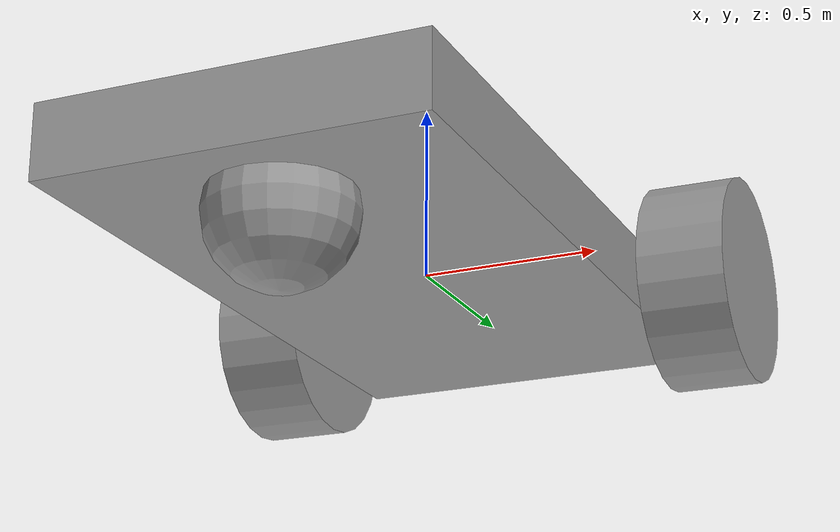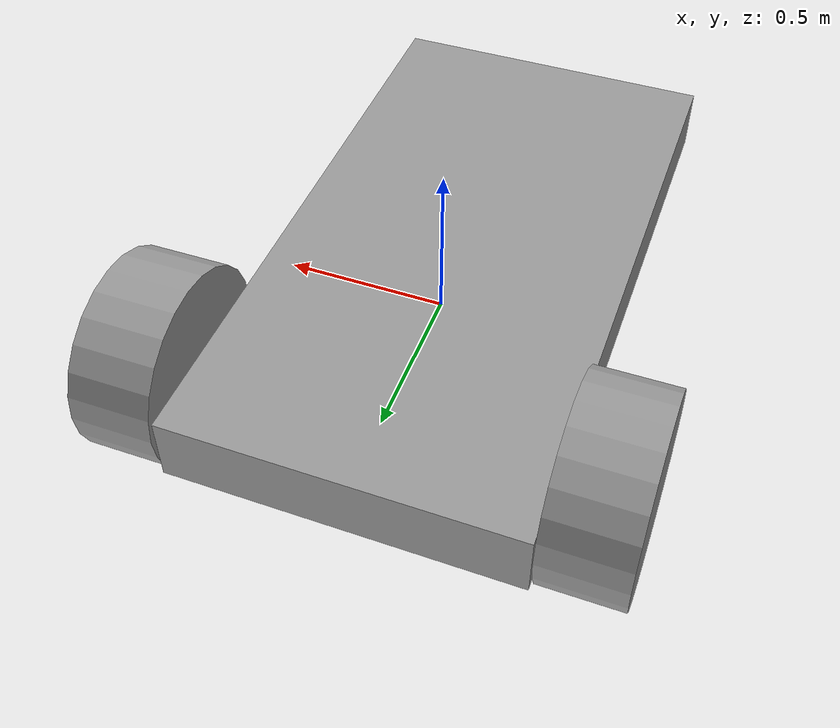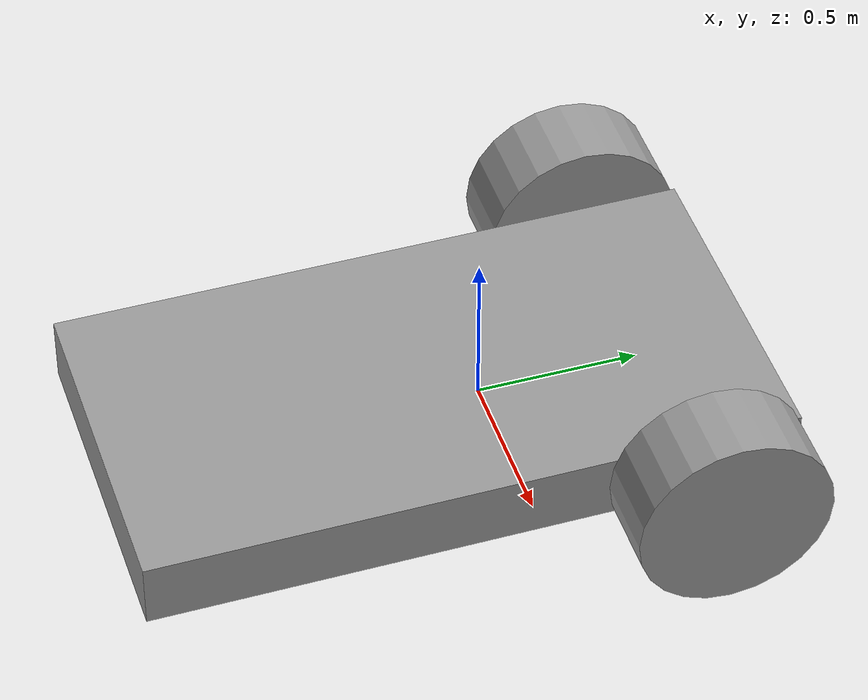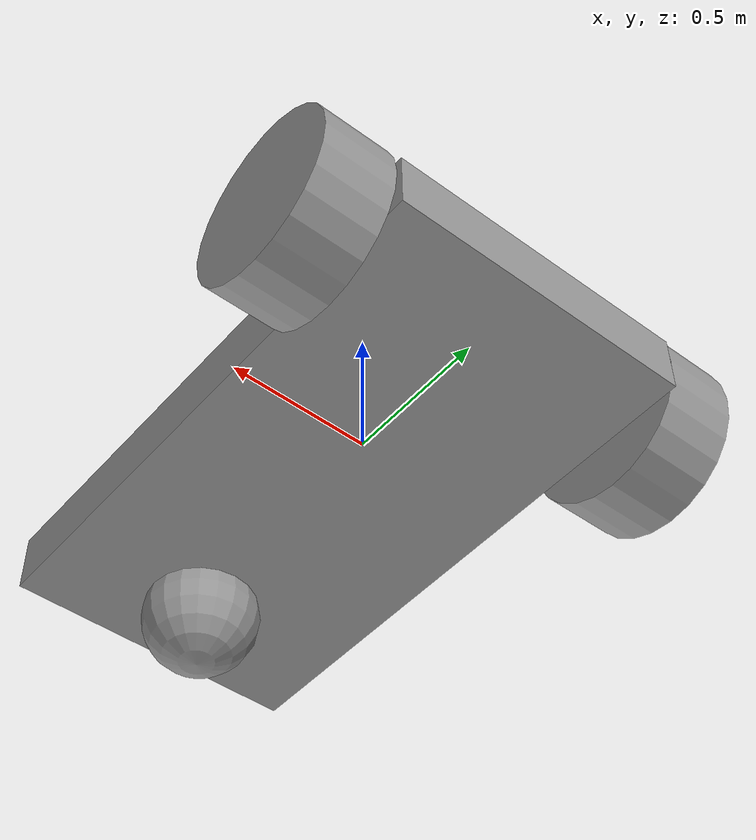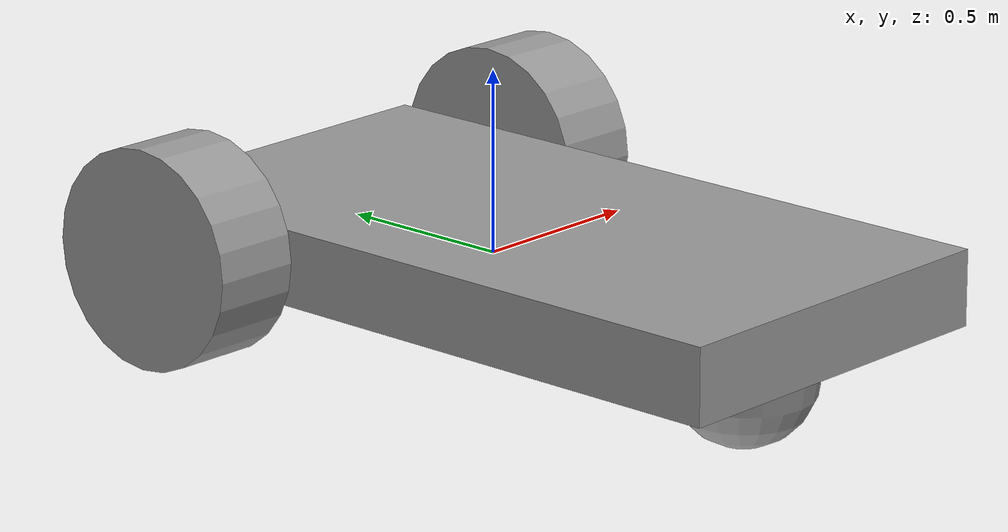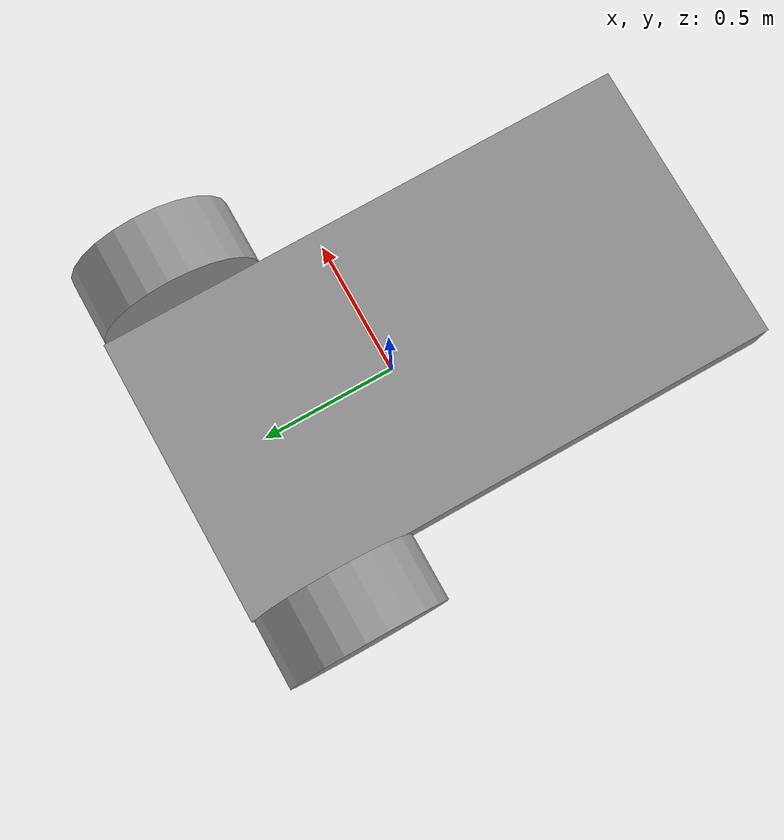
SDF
<?xml version='1.0'?>
<sdf version='1.7'>
  <model name='cart_robot'>
    <link name='link_1'>
      <inertial>
        <mass>0.438915</mass>
        <inertia>
          <ixx>0.146216</ixx>
          <ixy>0</ixy>
          <ixz>0</ixz>
          <iyy>0.0427244</iyy>
          <iyz>0</iyz>
          <izz>0.185771</izz>
        </inertia>
        <pose>0 0 0 0 -0 0</pose>
      </inertial>
      <pose>-0.003748 -0.17357 0.031033 0 -0 0</pose>
      <visual name='visual'>
        <pose>0 0 0 0 -0 0</pose>
        <geometry>
          <box>
            <size>1.06055 1.98853 0.208153</size>
          </box>
        </geometry>
        <material>
          <lighting>1</lighting>
          <script>
            <uri>file://media/materials/scripts/gazebo.material</uri>
            <name>Gazebo/Grey</name>
          </script>
          <shader type='pixel'/>
          <emissive>0 0 0 1</emissive>
        </material>
        <transparency>0</transparency>
        <cast_shadows>1</cast_shadows>
      </visual>
      <collision name='collision'>
        <laser_retro>0</laser_retro>
        <max_contacts>10</max_contacts>
        <pose>0 0 0 0 -0 0</pose>
        <geometry>
          <box>
            <size>1.06055 1.98853 0.208153</size>
          </box>
        </geometry>
        <surface>
          <friction>
            <ode>
              <mu>1</mu>
              <mu2>1</mu2>
              <fdir1>0 0 0</fdir1>
              <slip1>0</slip1>
              <slip2>0</slip2>
            </ode>
            <torsional>
              <coefficient>1</coefficient>
              <patch_radius>0</patch_radius>
              <surface_radius>0</surface_radius>
              <use_patch_radius>1</use_patch_radius>
              <ode>
                <slip>0</slip>
              </ode>
            </torsional>
          </friction>
          <bounce>
            <restitution_coefficient>0</restitution_coefficient>
            <threshold>1e+06</threshold>
          </bounce>
          <contact>
            <collide_without_contact>0</collide_without_contact>
            <collide_without_contact_bitmask>1</collide_without_contact_bitmask>
            <collide_bitmask>1</collide_bitmask>
            <ode>
              <soft_cfm>0</soft_cfm>
              <soft_erp>0.2</soft_erp>
              <kp>1e+13</kp>
              <kd>1</kd>
              <max_vel>0.01</max_vel>
              <min_depth>0</min_depth>
            </ode>
            <bullet>
              <split_impulse>1</split_impulse>
              <split_impulse_penetration_threshold>-0.01</split_impulse_penetration_threshold>
              <soft_cfm>0</soft_cfm>
              <soft_erp>0.2</soft_erp>
              <kp>1e+13</kp>
              <kd>1</kd>
            </bullet>
          </contact>
        </surface>
      </collision>
    </link>
    <link name='link_3'>
      <inertial>
        <mass>1</mass>
        <inertia>
          <ixx>0.145833</ixx>
          <ixy>0</ixy>
          <ixz>0</ixz>
          <iyy>0.145833</iyy>
          <iyz>0</iyz>
          <izz>0.125</izz>
        </inertia>
        <pose>0 0 0 1.5708 -0 0</pose>
      </inertial>
      <pose>0.668748 0.520697 0.048939 0 -1.56333 0</pose>
      <gravity>1</gravity>
      <self_collide>0</self_collide>
      <kinematic>0</kinematic>
      <enable_wind>0</enable_wind>
      <visual name='visual'>
        <pose>0 0 0 0 -0 0</pose>
        <geometry>
          <cylinder>
            <radius>0.3</radius>
            <length>0.25</length>
          </cylinder>
        </geometry>
        <material>
          <lighting>1</lighting>
          <script>
            <uri>file://media/materials/scripts/gazebo.material</uri>
            <name>Gazebo/Grey</name>
          </script>
          <shader type='pixel'>
            <normal_map>__default__</normal_map>
          </shader>
          <ambient>0.3 0.3 0.3 1</ambient>
          <diffuse>0.7 0.7 0.7 1</diffuse>
          <specular>0.01 0.01 0.01 1</specular>
          <emissive>0 0 0 1</emissive>
        </material>
        <transparency>0</transparency>
        <cast_shadows>1</cast_shadows>
      </visual>
      <collision name='collision'>
        <laser_retro>0</laser_retro>
        <max_contacts>10</max_contacts>
        <pose>0 0 0 0 -0 0</pose>
        <geometry>
          <cylinder>
            <radius>0.3</radius>
            <length>0.25</length>
          </cylinder>
        </geometry>
        <surface>
          <friction>
            <ode>
              <mu>1</mu>
              <mu2>1</mu2>
              <fdir1>0 0 0</fdir1>
              <slip1>0</slip1>
              <slip2>0</slip2>
            </ode>
            <torsional>
              <coefficient>1</coefficient>
              <patch_radius>0</patch_radius>
              <surface_radius>0</surface_radius>
              <use_patch_radius>1</use_patch_radius>
              <ode>
                <slip>0</slip>
              </ode>
            </torsional>
          </friction>
          <bounce>
            <restitution_coefficient>0</restitution_coefficient>
            <threshold>1e+06</threshold>
          </bounce>
          <contact>
            <collide_without_contact>0</collide_without_contact>
            <collide_without_contact_bitmask>1</collide_without_contact_bitmask>
            <collide_bitmask>1</collide_bitmask>
            <ode>
              <soft_cfm>0</soft_cfm>
              <soft_erp>0.2</soft_erp>
              <kp>1e+13</kp>
              <kd>1</kd>
              <max_vel>0.01</max_vel>
              <min_depth>0</min_depth>
            </ode>
            <bullet>
              <split_impulse>1</split_impulse>
              <split_impulse_penetration_threshold>-0.01</split_impulse_penetration_threshold>
              <soft_cfm>0</soft_cfm>
              <soft_erp>0.2</soft_erp>
              <kp>1e+13</kp>
              <kd>1</kd>
            </bullet>
          </contact>
        </surface>
      </collision>
    </link>
    <link name='link_3_clone'>
      <inertial>
        <mass>1</mass>
        <inertia>
          <ixx>0.145833</ixx>
          <ixy>0</ixy>
          <ixz>0</ixz>
          <iyy>0.145833</iyy>
          <iyz>0</iyz>
          <izz>0.125</izz>
        </inertia>
        <pose>0 0 0 1.5708 -0 0</pose>
      </inertial>
      <pose>-0.661274 0.520698 0.048995 0 -1.56333 0</pose>
      <gravity>1</gravity>
      <self_collide>0</self_collide>
      <kinematic>0</kinematic>
      <enable_wind>0</enable_wind>
      <visual name='visual'>
        <pose>0 0 0 0 -0 0</pose>
        <geometry>
          <cylinder>
            <radius>0.3</radius>
            <length>0.25</length>
          </cylinder>
        </geometry>
        <material>
          <lighting>1</lighting>
          <script>
            <uri>file://media/materials/scripts/gazebo.material</uri>
            <name>Gazebo/Grey</name>
          </script>
          <shader type='pixel'>
            <normal_map>__default__</normal_map>
          </shader>
          <ambient>0.3 0.3 0.3 1</ambient>
          <diffuse>0.7 0.7 0.7 1</diffuse>
          <specular>0.01 0.01 0.01 1</specular>
          <emissive>0 0 0 1</emissive>
        </material>
        <transparency>0</transparency>
        <cast_shadows>1</cast_shadows>
      </visual>
      <collision name='collision'>
        <laser_retro>0</laser_retro>
        <max_contacts>10</max_contacts>
        <pose>0 0 0 0 -0 0</pose>
        <geometry>
          <cylinder>
            <radius>0.3</radius>
            <length>0.25</length>
          </cylinder>
        </geometry>
        <surface>
          <friction>
            <ode>
              <mu>1</mu>
              <mu2>1</mu2>
              <fdir1>0 0 0</fdir1>
              <slip1>0</slip1>
              <slip2>0</slip2>
            </ode>
            <torsional>
              <coefficient>1</coefficient>
              <patch_radius>0</patch_radius>
              <surface_radius>0</surface_radius>
              <use_patch_radius>1</use_patch_radius>
              <ode>
                <slip>0</slip>
              </ode>
            </torsional>
          </friction>
          <bounce>
            <restitution_coefficient>0</restitution_coefficient>
            <threshold>1e+06</threshold>
          </bounce>
          <contact>
            <collide_without_contact>0</collide_without_contact>
            <collide_without_contact_bitmask>1</collide_without_contact_bitmask>
            <collide_bitmask>1</collide_bitmask>
            <ode>
              <soft_cfm>0</soft_cfm>
              <soft_erp>0.2</soft_erp>
              <kp>1e+13</kp>
              <kd>1</kd>
              <max_vel>0.01</max_vel>
              <min_depth>0</min_depth>
            </ode>
            <bullet>
              <split_impulse>1</split_impulse>
              <split_impulse_penetration_threshold>-0.01</split_impulse_penetration_threshold>
              <soft_cfm>0</soft_cfm>
              <soft_erp>0.2</soft_erp>
              <kp>1e+13</kp>
              <kd>1</kd>
            </bullet>
          </contact>
        </surface>
      </collision>
    </link>
    <link name='link_4'>
      <inertial>
        <mass>1</mass>
        <inertia>
          <ixx>0.1</ixx>
          <ixy>0</ixy>
          <ixz>0</ixz>
          <iyy>0.1</iyy>
          <iyz>0</iyz>
          <izz>0.1</izz>
        </inertia>
        <pose>0 0 0 0 -0 0</pose>
      </inertial>
      <pose>-0.003748 -0.86783 -0.128967 0 -0 0</pose>
      <gravity>1</gravity>
      <self_collide>0</self_collide>
      <kinematic>0</kinematic>
      <enable_wind>0</enable_wind>
      <visual name='visual'>
        <pose>0 0 0 0 -0 0</pose>
        <geometry>
          <sphere>
            <radius>0.2</radius>
          </sphere>
        </geometry>
        <material>
          <lighting>1</lighting>
          <script>
            <uri>file://media/materials/scripts/gazebo.material</uri>
            <name>Gazebo/Grey</name>
          </script>
          <shader type='pixel'>
            <normal_map>__default__</normal_map>
          </shader>
          <ambient>0.3 0.3 0.3 1</ambient>
          <diffuse>0.7 0.7 0.7 1</diffuse>
          <specular>0.01 0.01 0.01 1</specular>
          <emissive>0 0 0 1</emissive>
        </material>
        <transparency>0</transparency>
        <cast_shadows>1</cast_shadows>
      </visual>
      <collision name='collision'>
        <laser_retro>0</laser_retro>
        <max_contacts>10</max_contacts>
        <pose>0 0 0 0 -0 0</pose>
        <geometry>
          <sphere>
            <radius>0.2</radius>
          </sphere>
        </geometry>
        <surface>
          <friction>
            <ode>
              <mu>1</mu>
              <mu2>1</mu2>
              <fdir1>0 0 0</fdir1>
              <slip1>0</slip1>
              <slip2>0</slip2>
            </ode>
            <torsional>
              <coefficient>1</coefficient>
              <patch_radius>0</patch_radius>
              <surface_radius>0</surface_radius>
              <use_patch_radius>1</use_patch_radius>
              <ode>
                <slip>0</slip>
              </ode>
            </torsional>
          </friction>
          <bounce>
            <restitution_coefficient>0</restitution_coefficient>
            <threshold>1e+06</threshold>
          </bounce>
          <contact>
            <collide_without_contact>0</collide_without_contact>
            <collide_without_contact_bitmask>1</collide_without_contact_bitmask>
            <collide_bitmask>1</collide_bitmask>
            <ode>
              <soft_cfm>0</soft_cfm>
              <soft_erp>0.2</soft_erp>
              <kp>1e+13</kp>
              <kd>1</kd>
              <max_vel>0.01</max_vel>
              <min_depth>0</min_depth>
            </ode>
            <bullet>
              <split_impulse>1</split_impulse>
              <split_impulse_penetration_threshold>-0.01</split_impulse_penetration_threshold>
              <soft_cfm>0</soft_cfm>
              <soft_erp>0.2</soft_erp>
              <kp>1e+13</kp>
              <kd>1</kd>
            </bullet>
          </contact>
        </surface>
      </collision>
    </link>
    <joint name='link_1_JOINT_0' type='revolute'>
      <parent>link_1</parent>
      <child>link_3</child>
      <pose>0 0 0 0 -0 0</pose>
      <axis>
        <xyz>0 0 1</xyz>
        <limit>
          <lower>-1.79769e+308</lower>
          <upper>1.79769e+308</upper>
          <effort>-1</effort>
          <velocity>-1</velocity>
        </limit>
        <dynamics>
          <spring_reference>0</spring_reference>
          <spring_stiffness>0</spring_stiffness>
          <damping>0</damping>
        </dynamics>
      </axis>
      <physics>
        <ode>
          <limit>
            <cfm>0</cfm>
            <erp>0.2</erp>
          </limit>
          <suspension>
            <cfm>0</cfm>
            <erp>0.2</erp>
          </suspension>
        </ode>
      </physics>
    </joint>
    <joint name='link_1_JOINT_1' type='revolute'>
      <parent>link_1</parent>
      <child>link_3_clone</child>
      <pose>0 0 0 0 -0 0</pose>
      <axis>
        <xyz>1 0 0</xyz>
        <limit>
          <lower>-1.79769e+308</lower>
          <upper>1.79769e+308</upper>
          <effort>-1</effort>
          <velocity>-1</velocity>
        </limit>
        <dynamics>
          <spring_reference>0</spring_reference>
          <spring_stiffness>0</spring_stiffness>
          <damping>0</damping>
        </dynamics>
      </axis>
      <physics>
        <ode>
          <limit>
            <cfm>0</cfm>
            <erp>0.2</erp>
          </limit>
          <suspension>
            <cfm>0</cfm>
            <erp>0.2</erp>
          </suspension>
        </ode>
      </physics>
    </joint>
    <joint name='link_1_JOINT_2' type='revolute'>
      <parent>link_1</parent>
      <child>link_4</child>
      <pose>0 0 0 0 -0 0</pose>
      <axis>
        <xyz>1 0 0</xyz>
        <limit>
          <lower>-1.79769e+308</lower>
          <upper>1.79769e+308</upper>
          <effort>-1</effort>
          <velocity>-1</velocity>
        </limit>
        <dynamics>
          <spring_reference>0</spring_reference>
          <spring_stiffness>0</spring_stiffness>
          <damping>0</damping>
        </dynamics>
      </axis>
      <physics>
        <ode>
          <limit>
            <cfm>0</cfm>
            <erp>0.2</erp>
          </limit>
          <suspension>
            <cfm>0</cfm>
            <erp>0.2</erp>
          </suspension>
        </ode>
      </physics>
    </joint>
    <static>0</static>
    <allow_auto_disable>1</allow_auto_disable>
  </model>
</sdf>
